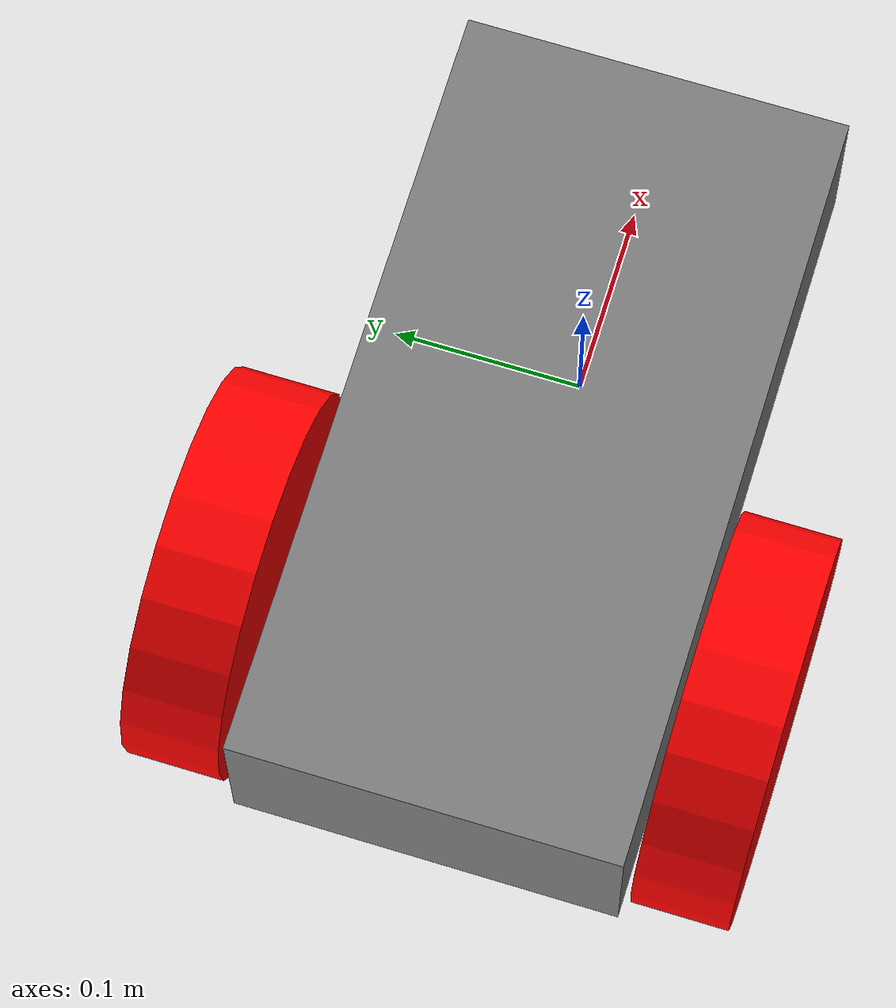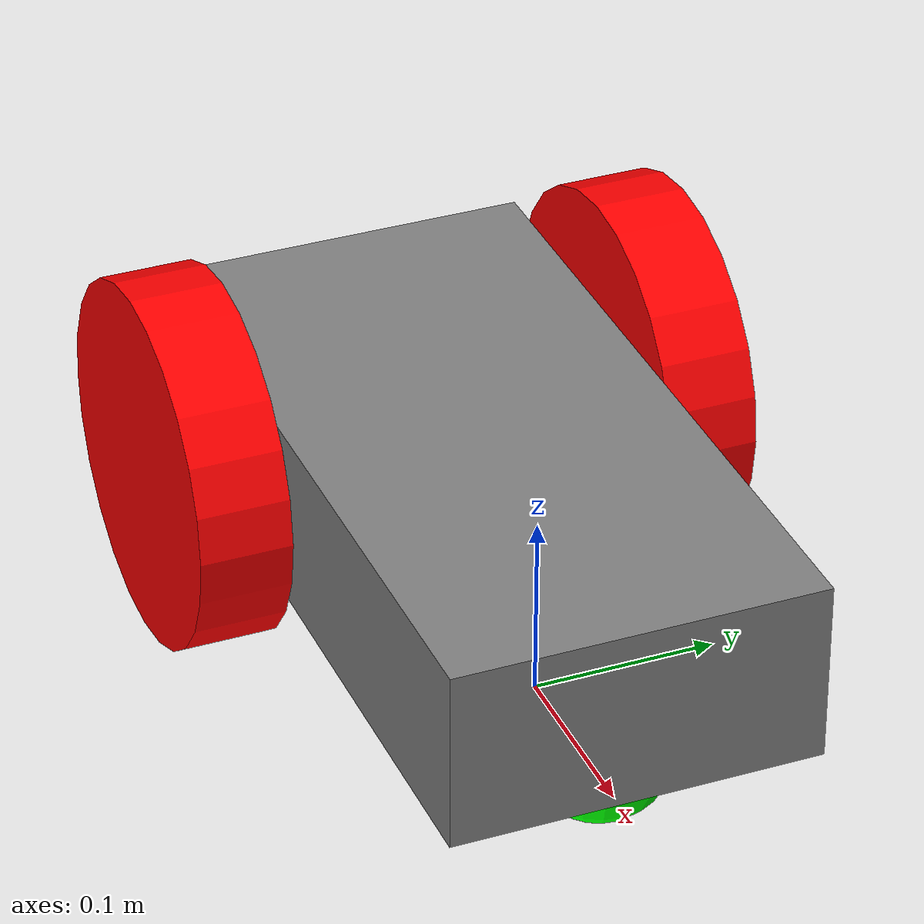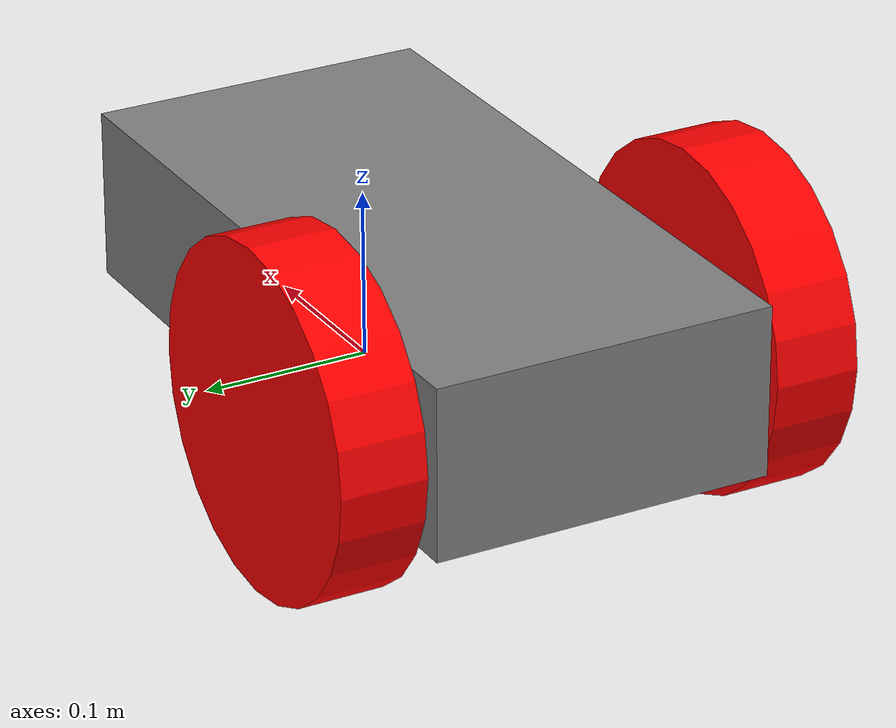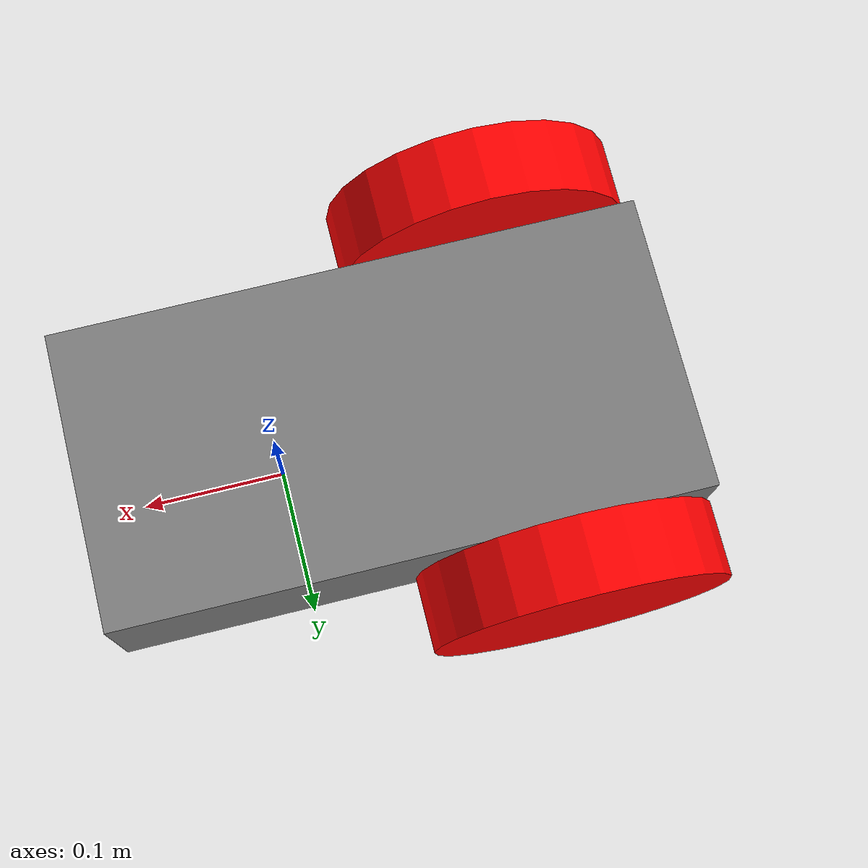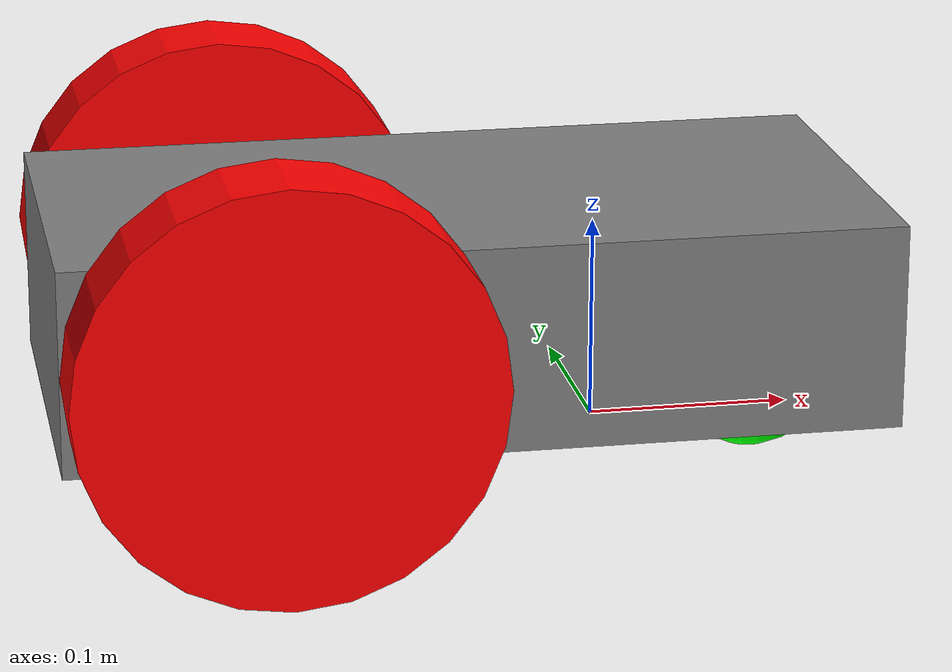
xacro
<?xml version="1.0"?>
<robot name="dtw_robot" xmlns:xacro="http://ros.org/wiki/xacro">
  <material name="gray">
    <color rgba="0.5 0.5 0.5 2"/>
  </material>
  <material name="red">
    <color rgba="1.0 0.0 0.0 2"/>
  </material>
  <material name="green">
   <color rgba="0 1.0 0 2"/>
  </material>

  <xacro:macro name="wheel_macro" params="parent prefix xyz">
    <joint name="${prefix}_joint" type="continuous">
      <origin xyz="${xyz}" rpy="${radians(-90)} 0 0"/>
      <parent link="${parent}"/>
      <child  link="${prefix}_link"/>
      <axis xyz="0 0 1" />
    </joint>
    <link name="${prefix}_link">
      <visual>
        <geometry>
          <cylinder radius="0.1" length="0.05" />
        </geometry>
        <material name="red"/>
      </visual>
    </link>
  </xacro:macro>

  <link name="world"/>

  <joint name="body_joint" type="fixed">
    <parent link="world"/>
    <child  link="body_link"/>
    <origin xyz="-0.07 0 0.07" rpy="0 0 0"/>
  </joint>
  <link name="body_link">
    <visual>
      <origin xyz="0 0 0" rpy="0 0 0" />
      <geometry>
        <box size="0.4 0.2 0.1" />
      </geometry>
      <material name="gray" />
    </visual>
  </link>

  <xacro:wheel_macro prefix="left_wheel"  parent="body_link" xyz="-0.1 0.13 0"/>
  <xacro:wheel_macro prefix="right_wheel" parent="body_link" xyz="-0.1 -0.13 0"/>

  <joint name="ball_joint" type="fixed">
    <parent link="body_link"/>
    <child  link="ball_link"/>
    <origin xyz="0.15 0 -0.05" rpy="0 0 0"/>
  </joint>
  <link name="ball_link">
   <visual>
     <origin xyz="0 0 0" rpy="0 0 0" />
     <geometry>
       <sphere radius="0.04" />
     </geometry>
     <material name="green" />
   </visual>
  </link>
</robot>
